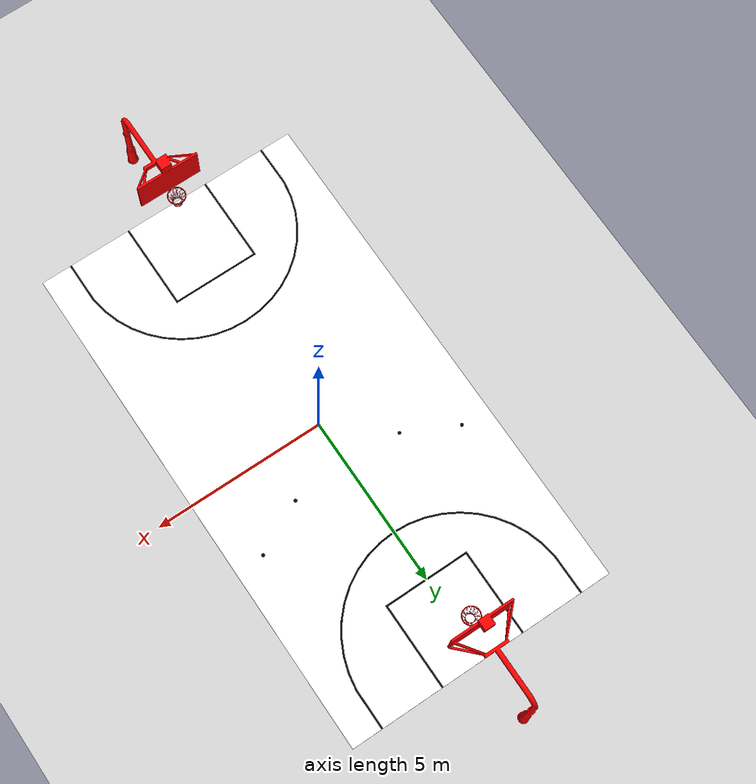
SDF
<sdf version='1.9'>
  <world name='robocon2025_map'>
    <physics name='world_physics' type='ignored'>
      <max_step_size>0.01</max_step_size>
      <real_time_factor>1</real_time_factor>
    </physics>
    <plugin
      filename="ignition-gazebo-physics-system"
      name="ignition::gazebo::systems::Physics">
    </plugin>
    <plugin
      filename="ignition-gazebo-sensors-system"
      name="ignition::gazebo::systems::Sensors">
      <render_engine>ogre</render_engine>
    </plugin>
    <plugin
      filename="ignition-gazebo-user-commands-system"
      name="ignition::gazebo::systems::UserCommands">
    </plugin>
    <plugin
      filename="ignition-gazebo-scene-broadcaster-system"
      name="ignition::gazebo::systems::SceneBroadcaster">
    </plugin>

    <scene>
      <ambient>1.0 1.0 1.0</ambient>
      <background>0.8 0.8 0.8</background>
      <grid>true</grid>
    </scene>

    <gui fullscreen="0">

      <!-- 3D scene -->
      <plugin filename="MinimalScene" name="3D View">
        <ignition-gui>
          <title>3D View</title>
          <property type="bool" key="showTitleBar">false</property>
          <property type="string" key="state">docked</property>
        </ignition-gui>

        <engine>ogre2</engine>
        <scene>scene</scene>
        <ambient_light>0.4 0.4 0.4</ambient_light>
        <background_color>0.8 0.8 0.8</background_color>
        <camera_pose>-6 0 6 0 0.5 0</camera_pose>
      </plugin>

      <!-- Plugins that add functionality to the scene -->
      <plugin filename="EntityContextMenuPlugin" name="Entity context menu">
        <ignition-gui>
          <property key="state" type="string">floating</property>
          <property key="width" type="double">5</property>
          <property key="height" type="double">5</property>
          <property key="showTitleBar" type="bool">false</property>
        </ignition-gui>
      </plugin>
      <plugin filename="GzSceneManager" name="Scene Manager">
        <ignition-gui>
          <property key="resizable" type="bool">false</property>
          <property key="width" type="double">5</property>
          <property key="height" type="double">5</property>
          <property key="state" type="string">floating</property>
          <property key="showTitleBar" type="bool">false</property>
        </ignition-gui>
      </plugin>
      <plugin filename="InteractiveViewControl" name="Interactive view control">
        <ignition-gui>
          <property key="resizable" type="bool">false</property>
          <property key="width" type="double">5</property>
          <property key="height" type="double">5</property>
          <property key="state" type="string">floating</property>
          <property key="showTitleBar" type="bool">false</property>
        </ignition-gui>
      </plugin>
      <plugin filename="CameraTracking" name="Camera Tracking">
        <ignition-gui>
          <property key="resizable" type="bool">false</property>
          <property key="width" type="double">5</property>
          <property key="height" type="double">5</property>
          <property key="state" type="string">floating</property>
          <property key="showTitleBar" type="bool">false</property>
        </ignition-gui>
      </plugin>
      <!-- World control -->
      <plugin filename="WorldControl" name="World control">
        <ignition-gui>
          <title>World control</title>
          <property type="bool" key="showTitleBar">false</property>
          <property type="bool" key="resizable">false</property>
          <property type="double" key="height">72</property>
          <property type="double" key="width">121</property>
          <property type="double" key="z">1</property>

          <property type="string" key="state">floating</property>
          <anchors target="3D View">
            <line own="left" target="left"/>
            <line own="bottom" target="bottom"/>
          </anchors>
        </ignition-gui>

        <play_pause>true</play_pause>
        <step>true</step>
        <start_paused>true</start_paused>
        <use_event>true</use_event>

      </plugin>

      <!-- World statistics -->
      <plugin filename="WorldStats" name="World stats">
        <ignition-gui>
          <title>World stats</title>
          <property type="bool" key="showTitleBar">false</property>
          <property type="bool" key="resizable">false</property>
          <property type="double" key="height">110</property>
          <property type="double" key="width">290</property>
          <property type="double" key="z">1</property>

          <property type="string" key="state">floating</property>
          <anchors target="3D View">
            <line own="right" target="right"/>
            <line own="bottom" target="bottom"/>
          </anchors>
        </ignition-gui>

        <sim_time>true</sim_time>
        <real_time>true</real_time>
        <real_time_factor>true</real_time_factor>
        <iterations>true</iterations>
      </plugin>

      <plugin filename="ImageDisplay" name="Image Display">
        <ignition-gui>
          <property key="state" type="string">docked</property>
        </ignition-gui>
      </plugin>

      <!-- Inspector -->
      <plugin filename="ComponentInspector" name="Component inspector">
        <ignition-gui>
          <property type="string" key="state">docked</property>
        </ignition-gui>
      </plugin>

      <!-- Entity tree -->
      <plugin filename="EntityTree" name="Entity tree">
        <ignition-gui>
          <property type="string" key="state">docked</property>
        </ignition-gui>
      </plugin>

      <plugin filename="KeyPublisher" name="Key Publisher" />
    </gui>

    <model name='ground_plane'>
      <static>true</static>
      <link name='link'>
        <collision name='collision'>
          <geometry>
            <plane>
              <normal>0 0 1</normal>
              <size>100 100</size>
            </plane>
          </geometry>
          <surface>
            <friction>
              <ode/>
            </friction>
            <bounce/>
            <contact/>
          </surface>
        </collision>
        <visual name='visual'>
          <geometry>
            <plane>
              <normal>0 0 1</normal>
              <size>100 100</size>
            </plane>
          </geometry>
          <material>
            <ambient>0.8 0.8 0.8 1</ambient>
            <diffuse>0.8 0.8 0.8 1</diffuse>
            <specular>0.8 0.8 0.8 1</specular>
          </material>
        </visual>
        <pose>0 0 0 0 -0 0</pose>
        <inertial>
          <pose>0 0 0 0 -0 0</pose>
          <mass>1</mass>
          <inertia>
            <ixx>1</ixx>
            <ixy>0</ixy>
            <ixz>0</ixz>
            <iyy>1</iyy>
            <iyz>0</iyz>
            <izz>1</izz>
          </inertia>
        </inertial>
        <enable_wind>false</enable_wind>
      </link>
      <pose>0 0 0 0 -0 0</pose>
      <self_collide>false</self_collide>
    </model>

    <model name='santhidauv2'>
      <link name='base_link'>
        <inertial>
          <pose>-0.005671 -0.007226 -0.339291 0 -0 0</pose>
          <mass>247733</mass>
          <inertia>
            <ixx>16349400</ixx>
            <ixy>48904</ixy>
            <ixz>-280.97300000000001</ixz>
            <iyy>6737020</iyy>
            <iyz>-357.94900000000001</iyz>
            <izz>23069900</izz>
          </inertia>
        </inertial>
        <collision name='base_link_collision'>
          <pose>0 0 0 0 0 0</pose>
          <geometry>
            <mesh>
              <scale>1 1 1</scale>
              <uri>meshes/base_link.STL</uri>
            </mesh>
          </geometry>
        </collision>
        <collision name='base_link_fixed_joint_lump__basket_1_collision_1'>
          <pose>0 -6.6228 2.318 0 0 0</pose>
          <geometry>
            <mesh>
              <scale>1 1 1</scale>
              <uri>meshes/basket_1.STL</uri>
            </mesh>
          </geometry>
        </collision>
        <collision name='base_link_fixed_joint_lump__basket_2_collision_2'>
          <pose>0 6.6228 2.318 0 0 0</pose>
          <geometry>
            <mesh>
              <scale>1 1 1</scale>
              <uri>meshes/basket_2.STL</uri>
            </mesh>
          </geometry>
        </collision>
        <collision name='base_link_fixed_joint_lump__car_1_collision_3'>
          <pose>3.1496 2.1246 -0.09950000000000001 0 0 0</pose>
          <geometry>
            <mesh>
              <scale>1 1 1</scale>
              <uri>meshes/car_1.STL</uri>
            </mesh>
          </geometry>
        </collision>
        <collision name='base_link_fixed_joint_lump__car_2_collision_4'>
          <pose>1.6525684565338 1.38074631430848 -0.107333522735703 0 0 0</pose>
          <geometry>
            <mesh>
              <scale>1 1 1</scale>
              <uri>meshes/car_2.STL</uri>
            </mesh>
          </geometry>
        </collision>
        <collision name='base_link_fixed_joint_lump__car_3_collision_5'>
          <pose>0 1.1316 -0.09950000000000001 0 0 0</pose>
          <geometry>
            <mesh>
              <scale>1 1 1</scale>
              <uri>meshes/car_3.STL</uri>
            </mesh>
          </geometry>
        </collision>
        <collision name='base_link_fixed_joint_lump__car_4_collision_6'>
          <pose>-1.6512 1.3857 -0.09950000000000001 0 0 0</pose>
          <geometry>
            <mesh>
              <scale>1 1 1</scale>
              <uri>meshes/car_4.STL</uri>
            </mesh>
          </geometry>
        </collision>
        <collision name='base_link_fixed_joint_lump__car_5_collision_7'>
          <pose>-3.1496 2.1246 -0.09950000000000001 0 0 0</pose>
          <geometry>
            <mesh>
              <scale>1 1 1</scale>
              <uri>meshes/car_5.STL</uri>
            </mesh>
          </geometry>
        </collision>
        <collision name='base_link_fixed_joint_lump__part_blue_1_collision_8'>
          <pose>0 -6.2625 -0.1 0 0 0</pose>
          <geometry>
            <mesh>
              <scale>1 1 1</scale>
              <uri>meshes/part_blue_1.STL</uri>
            </mesh>
          </geometry>
        </collision>
        <collision name='base_link_fixed_joint_lump__part_blue_2_collision_9'>
          <pose>0 -5.5618 -0.1 0 0 0</pose>
          <geometry>
            <mesh>
              <scale>1 1 1</scale>
              <uri>meshes/part_blue_2.STL</uri>
            </mesh>
          </geometry>
        </collision>
        <collision name='base_link_fixed_joint_lump__part_red_1_collision_10'>
          <pose>0 6.2625 -0.1 0 0 0</pose>
          <geometry>
            <mesh>
              <scale>1 1 1</scale>
              <uri>meshes/part_red_1.STL</uri>
            </mesh>
          </geometry>
        </collision>
        <collision name='base_link_fixed_joint_lump__part_red_2_collision_11'>
          <pose>0 5.5618 -0.1 0 0 0</pose>
          <geometry>
            <mesh>
              <scale>1 1 1</scale>
              <uri>meshes/part_red_2.STL</uri>
            </mesh>
          </geometry>
        </collision>
        <visual name='base_link_visual'>
          <pose>0 0 0 0 0 1.5708</pose>
          <geometry>
            <mesh>
              <scale>1 1 1</scale>
              <uri>meshes/base_link.STL</uri>
            </mesh>
          </geometry>
          <material>
            <diffuse>1 1 1 1</diffuse>
            <ambient>1 1 1 1</ambient>
          </material>
        </visual>
        <visual name='base_link_fixed_joint_lump__basket_1_visual_1'>
          <pose>0 -6.6228 2.318 0 0 0</pose>
          <geometry>
            <mesh>
              <scale>1 1 1</scale>
              <uri>meshes/basket_1.STL</uri>
            </mesh>
          </geometry>
          <material>
            <diffuse>1 0 0 1</diffuse>
            <ambient>1 0 0 1</ambient>
          </material>
        </visual>
        <visual name='base_link_fixed_joint_lump__basket_2_visual_2'>
          <pose>0 6.6228 2.318 0 0 0</pose>
          <geometry>
            <mesh>
              <scale>1 1 1</scale>
              <uri>meshes/basket_2.STL</uri>
            </mesh>
          </geometry>
          <material>
            <diffuse>1 0 0 1</diffuse>
            <ambient>1 0 0 1</ambient>
          </material>
        </visual>
        <visual name='base_link_fixed_joint_lump__car_1_visual_3'>
          <pose>3.1496 2.1246 -0.09950000000000001 0 0 0</pose>
          <geometry>
            <mesh>
              <scale>1 1 1</scale>
              <uri>meshes/car_1.STL</uri>
            </mesh>
          </geometry>
          <material>
            <diffuse>0 0 0 1</diffuse>
            <ambient>0 0 0 1</ambient>
          </material>
        </visual>
        <visual name='base_link_fixed_joint_lump__car_2_visual_4'>
          <pose>1.6525684565338 1.38074631430848 -0.107333522735703 0 0 0</pose>
          <geometry>
            <mesh>
              <scale>1 1 1</scale>
              <uri>meshes/car_2.STL</uri>
            </mesh>
          </geometry>
          <material>
            <diffuse>0 0 0 1</diffuse>
            <ambient>0 0 0 1</ambient>
          </material>
        </visual>
        <visual name='base_link_fixed_joint_lump__car_3_visual_5'>
          <pose>0 1.1316 -0.09950000000000001 0 0 0</pose>
          <geometry>
            <mesh>
              <scale>1 1 1</scale>
              <uri>meshes/car_3.STL</uri>
            </mesh>
          </geometry>
          <material>
            <diffuse>0 0 0 1</diffuse>
            <ambient>0 0 0 1</ambient>
          </material>
        </visual>
        <visual name='base_link_fixed_joint_lump__car_4_visual_6'>
          <pose>-1.6512 1.3857 -0.09950000000000001 0 0 0</pose>
          <geometry>
            <mesh>
              <scale>1 1 1</scale>
              <uri>meshes/car_4.STL</uri>
            </mesh>
          </geometry>
          <material>
            <diffuse>0 0 0 1</diffuse>
            <ambient>0 0 0 1</ambient>
          </material>
        </visual>
        <visual name='base_link_fixed_joint_lump__car_5_visual_7'>
          <pose>-3.1496 2.1246 -0.09950000000000001 0 0 0</pose>
          <geometry>
            <mesh>
              <scale>1 1 1</scale>
              <uri>meshes/car_5.STL</uri>
            </mesh>
          </geometry>
          <material>
            <diffuse>0 0 0 1</diffuse>
            <ambient>0 0 0 1</ambient>
          </material>
        </visual>
        <visual name='base_link_fixed_joint_lump__part_blue_1_visual_8'>
          <pose>0 -6.2625 -0.1 0 0 0</pose>
          <geometry>
            <mesh>
              <scale>1 1 1</scale>
              <uri>meshes/part_blue_1.STL</uri>
            </mesh>
          </geometry>
          <material>
            <diffuse>0 0 0 1</diffuse>
            <ambient>0 0 0 1</ambient>
          </material>
        </visual>
        <visual name='base_link_fixed_joint_lump__part_blue_2_visual_9'>
          <pose>0 -5.5618 -0.1 0 0 0</pose>
          <geometry>
            <mesh>
              <scale>1 1 1</scale>
              <uri>meshes/part_blue_2.STL</uri>
            </mesh>
          </geometry>
          <material>
            <diffuse>0 0 0 1</diffuse>
            <ambient>0 0 0 1</ambient>
          </material>
        </visual>
        <visual name='base_link_fixed_joint_lump__part_red_1_visual_10'>
          <pose>0 6.2625 -0.1 0 0 0</pose>
          <geometry>
            <mesh>
              <scale>1 1 1</scale>
              <uri>meshes/part_red_1.STL</uri>
            </mesh>
          </geometry>
          <material>
            <diffuse>0 0 0 1</diffuse>
            <ambient>0 0 0 1</ambient>
          </material>
        </visual>
        <visual name='base_link_fixed_joint_lump__part_red_2_visual_11'>
          <pose>0 5.5618 -0.1 0 0 0</pose>
          <geometry>
            <mesh>
              <scale>1 1 1</scale>
              <uri>meshes/part_red_2.STL</uri>
            </mesh>
          </geometry>
          <material>
            <diffuse>0 0 0 1</diffuse>
            <ambient>0 0 0 1</ambient>
          </material>
        </visual>
        <pose>0 0 0 0 -0 0</pose>
        <enable_wind>false</enable_wind>
      </link>
      <frame name='basket1' attached_to='base_link'>
        <pose>0 -6.6228 2.318 0 -0 0</pose>
      </frame>
      <frame name='basket_1' attached_to='basket1'/>
      <frame name='basket2' attached_to='base_link'>
        <pose>0 6.6228 2.318 0 -0 0</pose>
      </frame>
      <frame name='basket_2' attached_to='basket2'/>
      <frame name='car1' attached_to='base_link'>
        <pose>3.1496 2.1246 -0.0995 0 -0 0</pose>
      </frame>
      <frame name='car_1' attached_to='car1'/>
      <frame name='car2' attached_to='base_link'>
        <pose>1.65257 1.38075 -0.107334 0 -0 0</pose>
      </frame>
      <frame name='car_2' attached_to='car2'/>
      <frame name='car3' attached_to='base_link'>
        <pose>0 1.1316 -0.0995 0 -0 0</pose>
      </frame>
      <frame name='car_3' attached_to='car3'/>
      <frame name='car4' attached_to='base_link'>
        <pose>-1.6512 1.3857 -0.0995 0 -0 0</pose>
      </frame>
      <frame name='car_4' attached_to='car4'/>
      <frame name='car5' attached_to='base_link'>
        <pose>-3.1496 2.1246 -0.0995 0 -0 0</pose>
      </frame>
      <frame name='car_5' attached_to='car5'/>
      <frame name='partblue1' attached_to='base_link'>
        <pose>0 -6.2625 -0.1 0 -0 0</pose>
      </frame>
      <frame name='part_blue_1' attached_to='partblue1'/>
      <frame name='partblue2' attached_to='base_link'>
        <pose>0 -5.5618 -0.1 0 -0 0</pose>
      </frame>
      <frame name='part_blue_2' attached_to='partblue2'/>
      <frame name='partred1' attached_to='base_link'>
        <pose>0 6.2625 -0.1 0 -0 0</pose>
      </frame>
      <frame name='part_red_1' attached_to='partred1'/>
      <frame name='partred2' attached_to='base_link'>
        <pose>0 5.5618 -0.1 0 -0 0</pose>
      </frame>
      <frame name='part_red_2' attached_to='partred2'/>
      <pose>0 -0 0.149999 0 -0 0</pose>
      <static>false</static>
      <self_collide>false</self_collide>
    </model>
    <light name='sun' type='directional'>
      <pose>0 0 10 0 -0 0</pose>
      <cast_shadows>true</cast_shadows>
      <intensity>1</intensity>
      <direction>-0.5 0.1 -0.9</direction>
      <diffuse>0.8 0.8 0.8 1</diffuse>
      <specular>0.2 0.2 0.2 1</specular>
      <attenuation>
        <range>1000</range>
        <linear>0.01</linear>
        <constant>0.90000000000000002</constant>
        <quadratic>0.001</quadratic>
      </attenuation>
      <spot>
        <inner_angle>0</inner_angle>
        <outer_angle>0</outer_angle>
        <falloff>0</falloff>
      </spot>
    </light>
  </world>
</sdf>
